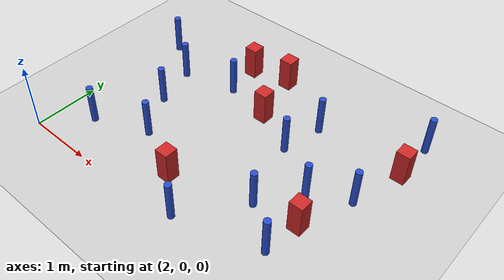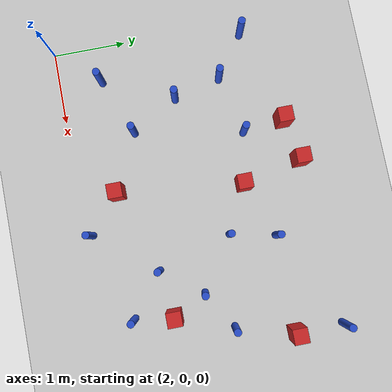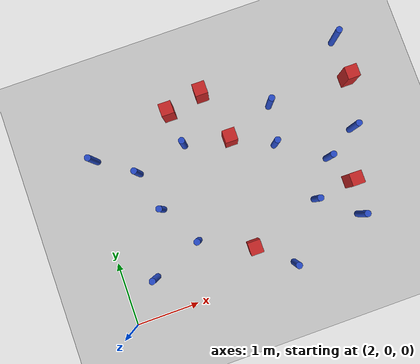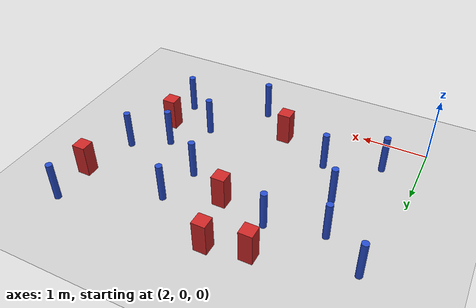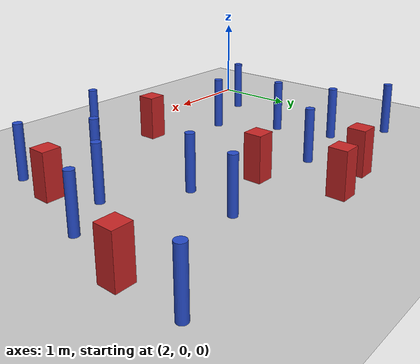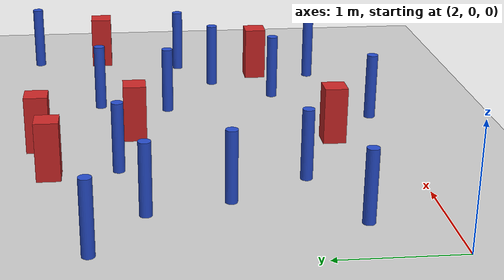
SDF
<sdf version="1.6">
 <world name="default">
  <model name="ground_plane">
   <static>1</static>
   <link name="link">
    <collision name="collision">
     <geometry><plane><normal>0 0 1</normal><size>100 100</size></plane></geometry>
     <surface><friction><ode><mu>100</mu><mu2>50</mu2></ode></friction></surface>
    </collision>
    <visual name="visual">
     <cast_shadows>0</cast_shadows>
     <geometry><plane><normal>0 0 1</normal><size>100 100</size></plane></geometry>
     <material>
      <ambient>1.0 1.0 1.0 1.0</ambient>
      <diffuse>0.8 0.8 0.8 1.0</diffuse>
      <specular>0.01 0.01 0.01 1.000000</specular>
     </material>
    </visual>
   </link>
  </model>
  <model name="pole_obstacle13">
   <static>true</static>
   <pose>6.21061196877 1.79302768578 7.38925637345e-09 -8.471706928e-08 1.24976765134e-08 -1.74513093015e-07</pose>
   <link name="link">
    <pose>0 0 0.3 0 -0 0</pose>
    <inertial>
     <mass>1</mass>
     <inertia><ixx>0.145833</ixx><ixy>0</ixy><ixz>0</ixz><iyy>0.145833</iyy><iyz>0</iyz><izz>0.125</izz></inertia>
    </inertial>
    <collision name="collision">
     <geometry><cylinder><radius>0.05</radius><length>.6</length></cylinder></geometry>
    </collision>
    <visual name="visual">
     <geometry><cylinder><radius>0.05</radius><length>.6</length></cylinder></geometry>
     <material>
      <script><name>Gazebo/Blue</name><uri>file://media/materials/scripts/gazebo.material</uri></script>
     </material>
    </visual>
   </link>
  </model>
  <model name="pole_obstacle23">
   <static>true</static>
   <pose>2.79433723792 2.23426225955 7.38925637345e-09 -8.47170692798e-08 1.24976764939e-08 -1.74513093025e-07</pose>
   <link name="link">
    <pose>0 0 0.3 0 -0 0</pose>
    <inertial>
     <mass>1</mass>
     <inertia><ixx>0.145833</ixx><ixy>0</ixy><ixz>0</ixz><iyy>0.145833</iyy><iyz>0</iyz><izz>0.125</izz></inertia>
    </inertial>
    <collision name="collision">
     <geometry><cylinder><radius>0.05</radius><length>.6</length></cylinder></geometry>
    </collision>
    <visual name="visual">
     <geometry><cylinder><radius>0.05</radius><length>.6</length></cylinder></geometry>
     <material>
      <script><name>Gazebo/Blue</name><uri>file://media/materials/scripts/gazebo.material</uri></script>
     </material>
    </visual>
   </link>
  </model>
  <model name="pole_obstacle47">
   <static>true</static>
   <pose>2.53132989086 0.604674307064 7.38925637345e-09 -8.471706928e-08 1.24976765177e-08 -1.74513093012e-07</pose>
   <link name="link">
    <pose>0 0 0.3 0 -0 0</pose>
    <inertial>
     <mass>1</mass>
     <inertia><ixx>0.145833</ixx><ixy>0</ixy><ixz>0</ixz><iyy>0.145833</iyy><iyz>0</iyz><izz>0.125</izz></inertia>
    </inertial>
    <collision name="collision">
     <geometry><cylinder><radius>0.05</radius><length>.6</length></cylinder></geometry>
    </collision>
    <visual name="visual">
     <geometry><cylinder><radius>0.05</radius><length>.6</length></cylinder></geometry>
     <material>
      <script><name>Gazebo/Blue</name><uri>file://media/materials/scripts/gazebo.material</uri></script>
     </material>
    </visual>
   </link>
  </model>
  <model name="square_post_obstacle50">
   <static>true</static>
   <pose>6.42778259608 2.5835620169 1.91545236811e-07 -7.35059704564e-06 1.12565212e-07 2.39332434364e-05</pose>
   <link name="link">
    <pose>0 0 0.25 0 -0 0</pose>
    <inertial>
     <mass>100</mass>
     <inertia>
      <ixx>0.166667</ixx>
      <ixy>0</ixy>
      <ixz>0</ixz>
      <iyy>0.166667</iyy>
      <iyz>0</iyz>
      <izz>0.166667</izz>
     </inertia>
    </inertial>
    <collision name="collision"><geometry><box><size>.2 .2 .5</size></box></geometry></collision>
    <visual name="visual">
     <geometry><box><size>.2 .2 .5</size></box></geometry>
     <material>
      <script><name>Gazebo/Red</name><uri>file://media/materials/scripts/gazebo.material</uri></script>
     </material>
    </visual>
   </link>
  </model>
  <model name="pole_obstacle51">
   <static>true</static>
   <pose>4.63802981212 0.105509506955 7.38925637345e-09 -8.47170692799e-08 1.24976765066e-08 -1.74513093016e-07</pose>
   <link name="link">
    <pose>0 0 0.3 0 -0 0</pose>
    <inertial>
     <mass>1</mass>
     <inertia><ixx>0.145833</ixx><ixy>0</ixy><ixz>0</ixz><iyy>0.145833</iyy><iyz>0</iyz><izz>0.125</izz></inertia>
    </inertial>
    <collision name="collision">
     <geometry><cylinder><radius>0.05</radius><length>.6</length></cylinder></geometry>
    </collision>
    <visual name="visual">
     <geometry><cylinder><radius>0.05</radius><length>.6</length></cylinder></geometry>
     <material>
      <script><name>Gazebo/Blue</name><uri>file://media/materials/scripts/gazebo.material</uri></script>
     </material>
    </visual>
   </link>
  </model>
  <model name="square_post_obstacle54">
   <static>true</static>
   <pose>4.12608236426 0.55460140565 1.91545236811e-07 -7.35059704564e-06 1.12565212e-07 2.39332434364e-05</pose>
   <link name="link">
    <pose>0 0 0.25 0 -0 0</pose>
    <inertial>
     <mass>100</mass>
     <inertia>
      <ixx>0.166667</ixx>
      <ixy>0</ixy>
      <ixz>0</ixz>
      <iyy>0.166667</iyy>
      <iyz>0</iyz>
      <izz>0.166667</izz>
     </inertia>
    </inertial>
    <collision name="collision"><geometry><box><size>.2 .2 .5</size></box></geometry></collision>
    <visual name="visual">
     <geometry><box><size>.2 .2 .5</size></box></geometry>
     <material>
      <script><name>Gazebo/Red</name><uri>file://media/materials/scripts/gazebo.material</uri></script>
     </material>
    </visual>
   </link>
  </model>
  <model name="pole_obstacle85">
   <static>true</static>
   <pose>3.612017693 2.42757508268 7.38925637345e-09 -8.47170692798e-08 1.24976764939e-08 -1.74513093025e-07</pose>
   <link name="link">
    <pose>0 0 0.3 0 -0 0</pose>
    <inertial>
     <mass>1</mass>
     <inertia><ixx>0.145833</ixx><ixy>0</ixy><ixz>0</ixz><iyy>0.145833</iyy><iyz>0</iyz><izz>0.125</izz></inertia>
    </inertial>
    <collision name="collision">
     <geometry><cylinder><radius>0.05</radius><length>.6</length></cylinder></geometry>
    </collision>
    <visual name="visual">
     <geometry><cylinder><radius>0.05</radius><length>.6</length></cylinder></geometry>
     <material>
      <script><name>Gazebo/Blue</name><uri>file://media/materials/scripts/gazebo.material</uri></script>
     </material>
    </visual>
   </link>
  </model>
  <model name="square_post_obstacle86">
   <static>true</static>
   <pose>4.32679421276 2.2790116075 1.91545236811e-07 -7.35059704564e-06 1.12565212e-07 2.39332434364e-05</pose>
   <link name="link">
    <pose>0 0 0.25 0 -0 0</pose>
    <inertial>
     <mass>100</mass>
     <inertia>
      <ixx>0.166667</ixx>
      <ixy>0</ixy>
      <ixz>0</ixz>
      <iyy>0.166667</iyy>
      <iyz>0</iyz>
      <izz>0.166667</izz>
     </inertia>
    </inertial>
    <collision name="collision"><geometry><box><size>.2 .2 .5</size></box></geometry></collision>
    <visual name="visual">
     <geometry><box><size>.2 .2 .5</size></box></geometry>
     <material>
      <script><name>Gazebo/Red</name><uri>file://media/materials/scripts/gazebo.material</uri></script>
     </material>
    </visual>
   </link>
  </model>
  <model name="pole_obstacle101">
   <static>true</static>
   <pose>2.96429696837 1.57492852533 7.38925637345e-09 -8.471706928e-08 1.24976765152e-08 -1.74513093012e-07</pose>
   <link name="link">
    <pose>0 0 0.3 0 -0 0</pose>
    <inertial>
     <mass>1</mass>
     <inertia><ixx>0.145833</ixx><ixy>0</ixy><ixz>0</ixz><iyy>0.145833</iyy><iyz>0</iyz><izz>0.125</izz></inertia>
    </inertial>
    <collision name="collision">
     <geometry><cylinder><radius>0.05</radius><length>.6</length></cylinder></geometry>
    </collision>
    <visual name="visual">
     <geometry><cylinder><radius>0.05</radius><length>.6</length></cylinder></geometry>
     <material>
      <script><name>Gazebo/Blue</name><uri>file://media/materials/scripts/gazebo.material</uri></script>
     </material>
    </visual>
   </link>
  </model>
  <model name="square_post_obstacle99">
   <static>true</static>
   <pose>4.13153614042 3.11027207538 1.91545236811e-07 -7.35059704564e-06 1.12565212e-07 2.39332434364e-05</pose>
   <link name="link">
    <pose>0 0 0.25 0 -0 0</pose>
    <inertial>
     <mass>100</mass>
     <inertia>
      <ixx>0.166667</ixx>
      <ixy>0</ixy>
      <ixz>0</ixz>
      <iyy>0.166667</iyy>
      <iyz>0</iyz>
      <izz>0.166667</izz>
     </inertia>
    </inertial>
    <collision name="collision"><geometry><box><size>.2 .2 .5</size></box></geometry></collision>
    <visual name="visual">
     <geometry><box><size>.2 .2 .5</size></box></geometry>
     <material>
      <script><name>Gazebo/Red</name><uri>file://media/materials/scripts/gazebo.material</uri></script>
     </material>
    </visual>
   </link>
  </model>
  <model name="pole_obstacle166">
   <static>true</static>
   <pose>5.10377740959 2.58639645631 7.38925637345e-09 -8.47170692798e-08 1.24976764937e-08 -1.74513093023e-07</pose>
   <link name="link">
    <pose>0 0 0.3 0 -0 0</pose>
    <inertial>
     <mass>1</mass>
     <inertia><ixx>0.145833</ixx><ixy>0</ixy><ixz>0</ixz><iyy>0.145833</iyy><iyz>0</iyz><izz>0.125</izz></inertia>
    </inertial>
    <collision name="collision">
     <geometry><cylinder><radius>0.05</radius><length>.6</length></cylinder></geometry>
    </collision>
    <visual name="visual">
     <geometry><cylinder><radius>0.05</radius><length>.6</length></cylinder></geometry>
     <material>
      <script><name>Gazebo/Blue</name><uri>file://media/materials/scripts/gazebo.material</uri></script>
     </material>
    </visual>
   </link>
  </model>
  <model name="square_post_obstacle183">
   <static>true</static>
   <pose>3.54490060502 2.98982771521 1.91545236811e-07 -7.35059704564e-06 1.12565212e-07 2.39332434364e-05</pose>
   <link name="link">
    <pose>0 0 0.25 0 -0 0</pose>
    <inertial>
     <mass>100</mass>
     <inertia>
      <ixx>0.166667</ixx>
      <ixy>0</ixy>
      <ixz>0</ixz>
      <iyy>0.166667</iyy>
      <iyz>0</iyz>
      <izz>0.166667</izz>
     </inertia>
    </inertial>
    <collision name="collision"><geometry><box><size>.2 .2 .5</size></box></geometry></collision>
    <visual name="visual">
     <geometry><box><size>.2 .2 .5</size></box></geometry>
     <material>
      <script><name>Gazebo/Red</name><uri>file://media/materials/scripts/gazebo.material</uri></script>
     </material>
    </visual>
   </link>
  </model>
  <model name="pole_obstacle196">
   <static>true</static>
   <pose>5.85306698518 0.479716838489 7.38925637345e-09 -8.47170692799e-08 1.24976765124e-08 -1.74513093015e-07</pose>
   <link name="link">
    <pose>0 0 0.3 0 -0 0</pose>
    <inertial>
     <mass>1</mass>
     <inertia><ixx>0.145833</ixx><ixy>0</ixy><ixz>0</ixz><iyy>0.145833</iyy><iyz>0</iyz><izz>0.125</izz></inertia>
    </inertial>
    <collision name="collision">
     <geometry><cylinder><radius>0.05</radius><length>.6</length></cylinder></geometry>
    </collision>
    <visual name="visual">
     <geometry><cylinder><radius>0.05</radius><length>.6</length></cylinder></geometry>
     <material>
      <script><name>Gazebo/Blue</name><uri>file://media/materials/scripts/gazebo.material</uri></script>
     </material>
    </visual>
   </link>
  </model>
  <model name="pole_obstacle198">
   <static>true</static>
   <pose>4.97186563178 1.95942526173 7.38925637345e-09 -8.471706928e-08 1.24976765177e-08 -1.74513093012e-07</pose>
   <link name="link">
    <pose>0 0 0.3 0 -0 0</pose>
    <inertial>
     <mass>1</mass>
     <inertia><ixx>0.145833</ixx><ixy>0</ixy><ixz>0</ixz><iyy>0.145833</iyy><iyz>0</iyz><izz>0.125</izz></inertia>
    </inertial>
    <collision name="collision">
     <geometry><cylinder><radius>0.05</radius><length>.6</length></cylinder></geometry>
    </collision>
    <visual name="visual">
     <geometry><cylinder><radius>0.05</radius><length>.6</length></cylinder></geometry>
     <material>
      <script><name>Gazebo/Blue</name><uri>file://media/materials/scripts/gazebo.material</uri></script>
     </material>
    </visual>
   </link>
  </model>
  <model name="square_post_obstacle191">
   <static>true</static>
   <pose>5.91698956387 1.02314880992 1.91545236811e-07 -7.35059704564e-06 1.12565212e-07 2.39332434364e-05</pose>
   <link name="link">
    <pose>0 0 0.25 0 -0 0</pose>
    <inertial>
     <mass>100</mass>
     <inertia>
      <ixx>0.166667</ixx>
      <ixy>0</ixy>
      <ixz>0</ixz>
      <iyy>0.166667</iyy>
      <iyz>0</iyz>
      <izz>0.166667</izz>
     </inertia>
    </inertial>
    <collision name="collision"><geometry><box><size>.2 .2 .5</size></box></geometry></collision>
    <visual name="visual">
     <geometry><box><size>.2 .2 .5</size></box></geometry>
     <material>
      <script><name>Gazebo/Red</name><uri>file://media/materials/scripts/gazebo.material</uri></script>
     </material>
    </visual>
   </link>
  </model>
  <model name="pole_obstacle207">
   <static>true</static>
   <pose>6.43248356527 3.23635338219 7.38925637345e-09 -8.47170692798e-08 1.24976764937e-08 -1.74513093023e-07</pose>
   <link name="link">
    <pose>0 0 0.3 0 -0 0</pose>
    <inertial>
     <mass>1</mass>
     <inertia><ixx>0.145833</ixx><ixy>0</ixy><ixz>0</ixz><iyy>0.145833</iyy><iyz>0</iyz><izz>0.125</izz></inertia>
    </inertial>
    <collision name="collision">
     <geometry><cylinder><radius>0.05</radius><length>.6</length></cylinder></geometry>
    </collision>
    <visual name="visual">
     <geometry><cylinder><radius>0.05</radius><length>.6</length></cylinder></geometry>
     <material>
      <script><name>Gazebo/Blue</name><uri>file://media/materials/scripts/gazebo.material</uri></script>
     </material>
    </visual>
   </link>
  </model>
  <model name="pole_obstacle223">
   <static>true</static>
   <pose>3.33542205129 0.927390732419 7.38925637345e-09 -8.471706928e-08 1.24976765177e-08 -1.74513093012e-07</pose>
   <link name="link">
    <pose>0 0 0.3 0 -0 0</pose>
    <inertial>
     <mass>1</mass>
     <inertia><ixx>0.145833</ixx><ixy>0</ixy><ixz>0</ixz><iyy>0.145833</iyy><iyz>0</iyz><izz>0.125</izz></inertia>
    </inertial>
    <collision name="collision">
     <geometry><cylinder><radius>0.05</radius><length>.6</length></cylinder></geometry>
    </collision>
    <visual name="visual">
     <geometry><cylinder><radius>0.05</radius><length>.6</length></cylinder></geometry>
     <material>
      <script><name>Gazebo/Blue</name><uri>file://media/materials/scripts/gazebo.material</uri></script>
     </material>
    </visual>
   </link>
  </model>
  <model name="pole_obstacle225">
   <static>true</static>
   <pose>5.27825000957 0.930017020781 7.38925637345e-09 -8.47170692799e-08 1.24976765005e-08 -1.7451309302e-07</pose>
   <link name="link">
    <pose>0 0 0.3 0 -0 0</pose>
    <inertial>
     <mass>1</mass>
     <inertia><ixx>0.145833</ixx><ixy>0</ixy><ixz>0</ixz><iyy>0.145833</iyy><iyz>0</iyz><izz>0.125</izz></inertia>
    </inertial>
    <collision name="collision">
     <geometry><cylinder><radius>0.05</radius><length>.6</length></cylinder></geometry>
    </collision>
    <visual name="visual">
     <geometry><cylinder><radius>0.05</radius><length>.6</length></cylinder></geometry>
     <material>
      <script><name>Gazebo/Blue</name><uri>file://media/materials/scripts/gazebo.material</uri></script>
     </material>
    </visual>
   </link>
  </model>
  <model name="pole_obstacle244">
   <static>true</static>
   <pose>5.68843000957 1.47864002078 7.38925637345e-09 -8.471706928e-08 1.24976765134e-08 -1.74513093015e-07</pose>
   <link name="link">
    <pose>0 0 0.3 0 -0 0</pose>
    <inertial>
     <mass>1</mass>
     <inertia><ixx>0.145833</ixx><ixy>0</ixy><ixz>0</ixz><iyy>0.145833</iyy><iyz>0</iyz><izz>0.125</izz></inertia>
    </inertial>
    <collision name="collision">
     <geometry><cylinder><radius>0.05</radius><length>.6</length></cylinder></geometry>
    </collision>
    <visual name="visual">
     <geometry><cylinder><radius>0.05</radius><length>.6</length></cylinder></geometry>
     <material>
      <script><name>Gazebo/Blue</name><uri>file://media/materials/scripts/gazebo.material</uri></script>
     </material>
    </visual>
   </link>
  </model>
  <model name="pole_obstacle252">
   <static>true</static>
   <pose>2.20603000957 2.64988002078 7.38925637345e-09 -8.47170692794e-08 1.24976764549e-08 -1.74513093034e-07</pose>
   <link name="link">
    <pose>0 0 0.3 0 -0 0</pose>
    <inertial>
     <mass>1</mass>
     <inertia><ixx>0.145833</ixx><ixy>0</ixy><ixz>0</ixz><iyy>0.145833</iyy><iyz>0</iyz><izz>0.125</izz></inertia>
    </inertial>
    <collision name="collision">
     <geometry><cylinder><radius>0.05</radius><length>.6</length></cylinder></geometry>
    </collision>
    <visual name="visual">
     <geometry><cylinder><radius>0.05</radius><length>.6</length></cylinder></geometry>
     <material>
      <script><name>Gazebo/Blue</name><uri>file://media/materials/scripts/gazebo.material</uri></script>
     </material>
    </visual>
   </link>
  </model>
 </world>
</sdf>
